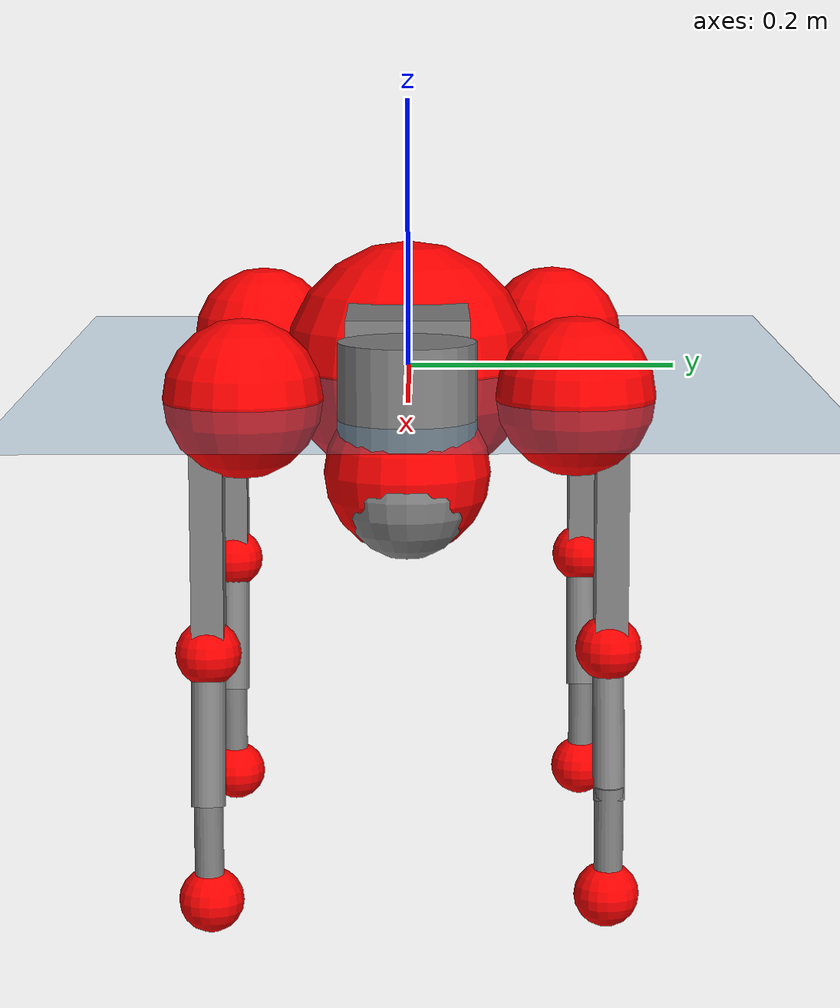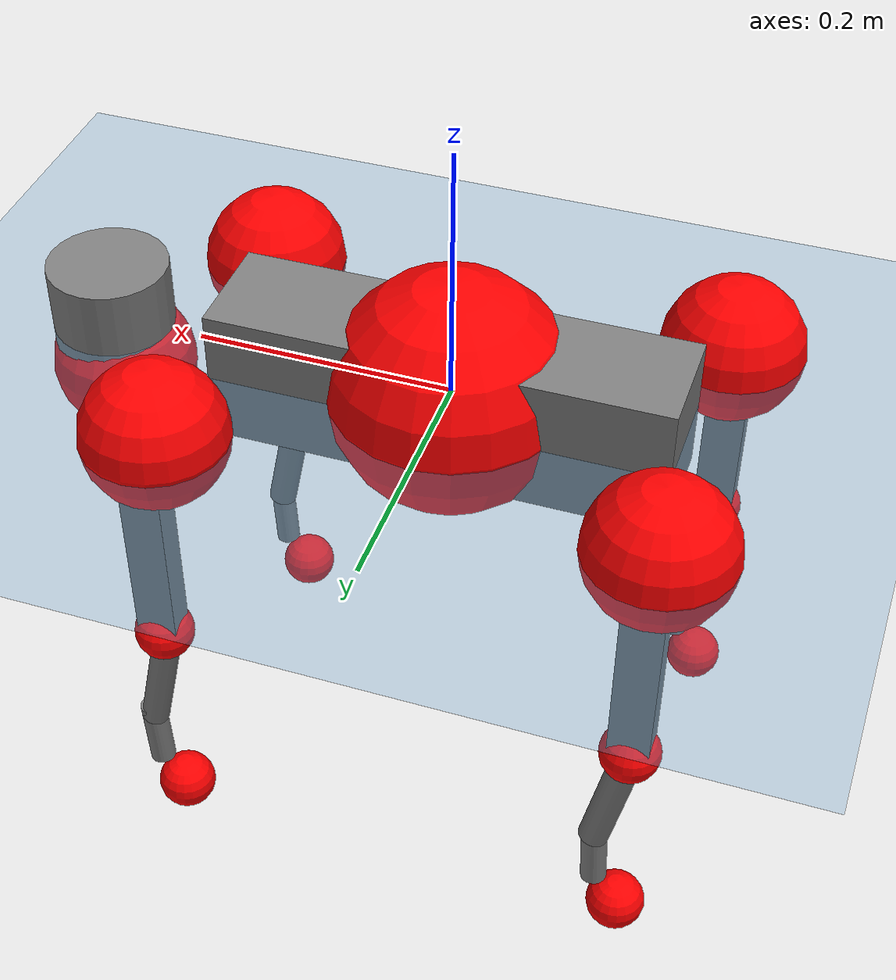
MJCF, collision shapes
<mujoco model="go2">
  <compiler angle="radian" assetdir="assets" balanceinertia="true" inertiafromgeom="false"/>

  <option timestep="0.005" density="1.2" viscosity="2e-05"/>

  <size nkey="1"/>

  <visual>
    <quality shadowsize="8192"/>
    <map shadowclip="0.5"/>
  </visual>

  <default>
    <default class="/">
      <geom contype="0" conaffinity="0" group="1" solref="-1000 -80"/>
      <site size="0.01 0.005 0.005" group="5"/>
      <general forcelimited="true" biastype="affine" gainprm="20" biasprm="0 -20 -0.5"/>
      <default class="go2">
        <joint armature="0.01" damping="0.01" frictionloss="0.2"/>
        <geom condim="1" margin="0.001"/>
        <default class="visual">
          <geom type="mesh" group="2"/>
        </default>
        <default class="collision">
          <geom group="3"/>
          <default class="foot">
            <geom size="0.022 0 0" condim="6" priority="1" friction="0.8 0.02 0.01" solimp="0.015 1 0.022"/>
          </default>
        </default>
        <default class="reward_collision_sphere">
          <geom group="5" rgba="1 0 0 1"/>
        </default>
      </default>
    </default>
  </default>

  <asset>
    <texture type="skybox" colorspace="auto" name="//unnamed_texture_0" builtin="gradient" rgb1="0.95 0.95 0.95" rgb2="0.95 0.95 0.95" width="100" height="600"/>
    <texture type="2d" colorspace="auto" name="texplane" builtin="checker" rgb1="0.345 0.575 0.748" rgb2="0.345 0.575 0.748" markrgb="1 1 1" width="512" height="512"/>
    <material name="MatPlane" class="/" texture="texplane" texuniform="true" texrepeat="2 2" specular="0.9"/>
    <material name="metal" class="/" rgba="0.9 0.95 0.95 1"/>
    <material name="black" class="/" rgba="0 0 0 1"/>
    <material name="white" class="/"/>
    <material name="gray" class="/" rgba="0.671705 0.692426 0.77427 1"/>
    <mesh name="base_0" class="/" file="base_0.obj"/>
    <mesh name="base_1" class="/" file="base_1.obj"/>
    <mesh name="base_2" class="/" file="base_2.obj"/>
    <mesh name="base_3" class="/" file="base_3.obj"/>
    <mesh name="base_4" class="/" file="base_4.obj"/>
    <mesh name="hip_0" class="/" file="hip_0.obj"/>
    <mesh name="hip_1" class="/" file="hip_1.obj"/>
    <mesh name="thigh_0" class="/" file="thigh_0.obj"/>
    <mesh name="thigh_1" class="/" file="thigh_1.obj"/>
    <mesh name="thigh_mirror_0" class="/" file="thigh_mirror_0.obj"/>
    <mesh name="thigh_mirror_1" class="/" file="thigh_mirror_1.obj"/>
    <mesh name="calf_0" class="/" file="calf_0.obj"/>
    <mesh name="calf_1" class="/" file="calf_1.obj"/>
    <mesh name="calf_mirror_0" class="/" file="calf_mirror_0.obj"/>
    <mesh name="calf_mirror_1" class="/" file="calf_mirror_1.obj"/>
    <mesh name="foot" class="/" file="foot.obj"/>
  </asset>

  <worldbody>
    <geom name="floor" class="/" size="100 100 0.125" type="plane" group="0" material="MatPlane"/>
    <light name="toplight_shadow" class="/" pos="0 0 5" dir="0.0990148 0.0990148 -0.990148" type="directional" ambient="0.04 0.04 0.04" diffuse="0.55 0.55 0.55" specular="0.12 0.12 0.12"/>
    <light name="toplight_fill" class="/" pos="0 0 5" dir="0.0990148 0.0990148 -0.990148" type="directional" castshadow="false" ambient="0.04 0.04 0.04" diffuse="0.3 0.3 0.3" specular="0.08 0.08 0.08"/>
    <body name="trunk" childclass="go2" pos="6.20316e-05 3.13342e-05 0.000789979" quat="1 -4.15748e-05 4.49459e-06 -9.28834e-06">
      <inertial pos="0.0197941 0.000248643 -0.00511519" quat="-0.000432438 0.713357 -0.00182282 0.700798" mass="5.75059" diaginertia="0.0871278 0.0983152 0.0108967"/>
      <joint name="//unnamed_joint_0" type="free" armature="0" damping="0" frictionloss="0"/>
      <geom name="//unnamed_geom_1" class="visual" material="black" mesh="base_0"/>
      <geom name="//unnamed_geom_2" class="visual" material="black" mesh="base_1"/>
      <geom name="//unnamed_geom_3" class="visual" material="black" mesh="base_2"/>
      <geom name="//unnamed_geom_4" class="visual" material="white" mesh="base_3"/>
      <geom name="//unnamed_geom_5" class="visual" material="gray" mesh="base_4"/>
      <geom name="trunk_1" class="collision" size="0.175947 0.0437294 0.0533172" type="box"/>
      <geom name="trunk_2" class="collision" size="0.0467694 0.0420925" pos="0.27308 0 0.00848741" type="cylinder"/>
      <geom name="trunk_3" class="collision" size="0.0439633" pos="0.280745 0 -0.0509244"/>
      <geom name="//unnamed_geom_9" class="reward_collision_sphere" size="0.0935389"/>
      <geom name="//unnamed_geom_10" class="reward_collision_sphere" size="0.0561233" pos="0.268289 0 -0.0381933"/>
      <site name="imu" pos="-0.0247838 0.00434248 0.034831" size="0.00935389"/>
      <camera name="track" pos="0 -1.9985 0" quat="0.707107 0.707107 0 0" mode="trackcom"/>
      <camera name="ego_camera" pos="0.298951 0 0.0381933" quat="-0.5 -0.5 0.5 0.5"/>
      <body name="FL_hip" pos="0.184725 0.0473494 0.00149872" quat="1 -0.000115959 -0.000103214 9.98678e-05">
        <inertial pos="-0.00490843 0.00229686 0.000684658" quat="0.497315 0.499368 0.506182 0.497081" mass="0.550545" diaginertia="0.000711879 0.000598145 0.000208384"/>
        <joint name="FL_hip_joint" pos="0 0 0" axis="0.999992 0.000895575 0.00378225" stiffness="0.000448232" range="-1.04034 1.04907" armature="0.00894417" damping="0.0029023" frictionloss="0.190158"/>
        <geom name="//unnamed_geom_11" class="visual" material="metal" mesh="hip_0"/>
        <geom name="//unnamed_geom_12" class="visual" material="gray" mesh="hip_1"/>
        <geom name="//unnamed_geom_13" class="collision" size="0.0430279 0.0187078" pos="0 0.0799401 0" quat="0.707107 0.707107 0 0" type="cylinder"/>
        <geom name="//unnamed_geom_14" class="reward_collision_sphere" size="0.0561233" pos="0 0.0699476 0"/>
        <body name="FL_thigh" pos="-0.000136351 0.0956349 0.00155899" quat="1 -1.68026e-05 -2.06412e-05 5.06585e-05">
          <inertial pos="-0.00372138 -0.0220822 -0.0268493" quat="0.829815 0.0856038 -0.0204516 0.551054" mass="0.94763" diaginertia="0.00482594 0.00577772 0.000383305"/>
          <joint name="FL_thigh_joint" pos="0 0 0" axis="0.00186649 0.999997 0.00135834" stiffness="0.00482231" range="-1.54921 3.47947" armature="0.00956494" damping="0.00539487" frictionloss="0.185798"/>
          <geom name="//unnamed_geom_15" class="visual" material="metal" mesh="thigh_0"/>
          <geom name="//unnamed_geom_16" class="visual" material="gray" mesh="thigh_1"/>
          <geom name="//unnamed_geom_17" class="collision" size="0.0996189 0.0114585 0.0159016" pos="0 0 -0.0903909" quat="0.707107 0 0.707107 0" type="box"/>
          <body name="FL_calf" pos="0.000286483 -0.00146753 -0.18123" quat="1 7.5418e-05 -4.82474e-05 8.74312e-05">
            <inertial pos="0.00642299 -0.000551074 -0.119291" quat="0.710552 0.00143079 -0.00440209 0.70363" mass="0.199639" diaginertia="0.00120444 0.0014586 2.35177e-05"/>
            <joint name="FL_calf_joint" pos="0 0 0" axis="0.00554673 0.999983 0.00168638" stiffness="0.000704386" range="-2.72349 -0.845443" armature="0.0094603" damping="0" frictionloss="0.194527"/>
            <geom name="//unnamed_geom_18" class="visual" material="gray" mesh="calf_0"/>
            <geom name="//unnamed_geom_19" class="visual" material="black" mesh="calf_1"/>
            <geom name="FL_calf0" class="collision" size="0.0112247 0.0561233" pos="0.0076654 0 -0.0509244" quat="0.994493 0 -0.104807 0" type="cylinder"/>
            <geom name="//unnamed_geom_21" class="collision" size="0.0102893 0.0304001" pos="0.0191635 0 -0.125614" quat="0.999688 0 0.0249974 0" type="cylinder"/>
            <geom name="//unnamed_geom_22" class="visual" pos="0 0 -0.180782" quat="1 0 0 0" material="black" mesh="foot"/>
            <geom name="FL_foot" class="foot" size="0.0174181" pos="-0.00191635 0 -0.180782"/>
            <geom name="//unnamed_geom_24" class="reward_collision_sphere" size="0.0233847"/>
            <geom name="//unnamed_geom_25" class="reward_collision_sphere" size="0.0233847" pos="-0.00191635 0 -0.180782"/>
            <site name="FL_foot" class="foot" pos="-0.00191635 0 -0.180782" size="0.00935389"/>
          </body>
        </body>
      </body>
      <body name="FR_hip" pos="0.185239 -0.0449072 0.000244727" quat="1 0.000211388 0.000177865 -0.000193008">
        <inertial pos="-0.00510281 -0.00208227 -0.000842809" quat="0.498211 0.505439 0.499196 0.497113" mass="0.55572" diaginertia="0.000716079 0.000598835 0.000211517"/>
        <joint name="FR_hip_joint" pos="0 0 0" axis="1 7.26857e-05 -5.17939e-05" range="-1.06034 1.04293" armature="0.00927993" damping="0.0131179" frictionloss="0.195674"/>
        <geom name="//unnamed_geom_26" class="visual" pos="0 1.31119e-09 5.62396e-08" quat="4.63268e-05 1 0 0" material="metal" mesh="hip_0"/>
        <geom name="//unnamed_geom_27" class="visual" pos="0 2.12559e-09 -1.39102e-07" quat="4.63268e-05 1 0 0" material="gray" mesh="hip_1"/>
        <geom name="//unnamed_geom_28" class="collision" size="0.0430279 0.0187078" pos="0 -0.0799401 0" quat="0.707107 0.707107 0 0" type="cylinder"/>
        <geom name="//unnamed_geom_29" class="reward_collision_sphere" size="0.0561233" pos="0 -0.0699476 0"/>
        <body name="FR_thigh" pos="0.00118352 -0.0956819 0.000170488" quat="1 3.08886e-05 8.81268e-05 -3.45829e-06">
          <inertial pos="-0.00380238 0.0221345 -0.02765" quat="0.551382 -0.0202074 0.0846456 0.829702" mass="0.962478" diaginertia="0.00484368 0.00592345 0.000393833"/>
          <joint name="FR_thigh_joint" pos="0 0 0" axis="-0.00371876 -0.999987 0.00350579" stiffness="0.000230642" range="-3.47167 1.56343" armature="0.00941389" damping="0.0128683" frictionloss="0.182724"/>
          <geom name="//unnamed_geom_30" class="visual" material="metal" mesh="thigh_mirror_0"/>
          <geom name="//unnamed_geom_31" class="visual" material="gray" mesh="thigh_mirror_1"/>
          <geom name="//unnamed_geom_32" class="collision" size="0.0996189 0.0114585 0.0159016" pos="0 0 -0.0903909" quat="0.707107 0 0.707107 0" type="box"/>
          <body name="FR_calf" pos="7.30212e-05 -0.000458055 -0.18146" quat="1 -0.000215047 -0.000110735 8.16293e-05">
            <inertial pos="0.00615798 0.000174824 -0.119613" quat="0.703115 -0.00470961 0.00267093 0.711055" mass="0.194509" diaginertia="0.00118806 0.00145583 2.33599e-05"/>
            <joint name="FR_calf_joint" pos="0 0 0" axis="-0.00266477 -0.999969 -0.00743073" range="0.841341 2.72805" armature="0.00945355" damping="0.00737456" frictionloss="0.177898"/>
            <geom name="//unnamed_geom_33" class="visual" material="gray" mesh="calf_mirror_0"/>
            <geom name="//unnamed_geom_34" class="visual" material="black" mesh="calf_mirror_1"/>
            <geom name="FR_calf0" class="collision" size="0.0121601 0.0561233" pos="0.00958175 0 -0.0509244" quat="0.995004 0 -0.0998334 0" type="cylinder"/>
            <geom name="//unnamed_geom_36" class="collision" size="0.0102893 0.0304001" pos="0.0191635 0 -0.125614" quat="0.999688 0 0.0249974 0" type="cylinder"/>
            <geom name="//unnamed_geom_37" class="visual" pos="0 0 -0.180782" quat="1 0 0 0" material="black" mesh="foot"/>
            <geom name="FR_foot" class="foot" size="0.0214171" pos="-0.00191635 0 -0.180782"/>
            <geom name="//unnamed_geom_39" class="reward_collision_sphere" size="0.0233847"/>
            <geom name="//unnamed_geom_40" class="reward_collision_sphere" size="0.0233847" pos="-0.00191635 0 -0.180782"/>
            <site name="FR_foot" class="foot" pos="-0.00191635 0 -0.180782" size="0.00935389"/>
          </body>
        </body>
      </body>
      <body name="RL_hip" pos="-0.186022 0.0464258 -0.000243383" quat="1 -8.21717e-06 -4.07151e-05 -2.8286e-05">
        <inertial pos="0.00586202 0.00261619 0.000535697" quat="0.506968 0.493121 0.498095 0.501712" mass="0.547614" diaginertia="0.000714169 0.000587442 0.000212989"/>
        <joint name="RL_hip_joint" pos="0 0 0" axis="-0.999896 0.0091821 -0.0111282" stiffness="0.00100799" range="-1.03882 1.06049" armature="0.00939436" damping="0.0164955" frictionloss="0.179538"/>
        <geom name="//unnamed_geom_41" class="visual" pos="-9.53345e-10 0 -1.86878e-07" quat="4.63268e-05 0 1 0" material="metal" mesh="hip_0"/>
        <geom name="//unnamed_geom_42" class="visual" pos="-1.54549e-09 0 -1.65734e-07" quat="4.63268e-05 0 1 0" material="gray" mesh="hip_1"/>
        <geom name="//unnamed_geom_43" class="collision" size="0.0430279 0.0187078" pos="0 0.0799401 0" quat="0.707107 0.707107 0 0" type="cylinder"/>
        <geom name="//unnamed_geom_44" class="reward_collision_sphere" size="0.0561233" pos="0 0.0699476 0"/>
        <body name="RL_thigh" pos="0.000271977 0.0956928 -0.00039842" quat="1 4.51814e-05 7.49455e-05 -0.000427185">
          <inertial pos="-0.00343598 -0.0212446 -0.0278386" quat="0.828959 0.0845361 -0.0190904 0.552554" mass="0.951719" diaginertia="0.0047971 0.00590683 0.000385029"/>
          <joint name="RL_thigh_joint" pos="0 0 0" axis="-0.000122644 1 -0.000872473" range="-0.522529 4.53746" armature="0.00940644" damping="0.00981112" frictionloss="0.187816"/>
          <geom name="//unnamed_geom_45" class="visual" material="metal" mesh="thigh_0"/>
          <geom name="//unnamed_geom_46" class="visual" material="gray" mesh="thigh_1"/>
          <geom name="//unnamed_geom_47" class="collision" size="0.0996189 0.0114585 0.0159016" pos="0 0 -0.0903909" quat="0.707107 0 0.707107 0" type="box"/>
          <body name="RL_calf" pos="-5.76059e-05 -0.000758203 -0.180667" quat="1 4.4847e-05 6.51773e-05 8.04352e-05">
            <inertial pos="0.0053993 -0.000635643 -0.119138" quat="0.710747 0.00157225 -0.00455322 0.703431" mass="0.200525" diaginertia="0.00121942 0.00148314 2.41032e-05"/>
            <joint name="RL_calf_joint" pos="0 0 0" axis="-0.00262709 0.999966 0.00775565" range="-2.72437 -0.861943" armature="0.00944491" damping="0" frictionloss="0.180487"/>
            <geom name="//unnamed_geom_48" class="visual" material="gray" mesh="calf_0"/>
            <geom name="//unnamed_geom_49" class="visual" material="black" mesh="calf_1"/>
            <geom name="RL_calf0" class="collision" size="0.0121601 0.0561233" pos="0.00958175 0 -0.0509244" quat="0.995004 0 -0.0998334 0" type="cylinder"/>
            <geom name="//unnamed_geom_51" class="collision" size="0.0102893 0.0304001" pos="0.0191635 0 -0.125614" quat="0.999688 0 0.0249974 0" type="cylinder"/>
            <geom name="//unnamed_geom_52" class="visual" pos="0 0 -0.180782" quat="1 0 0 0" material="black" mesh="foot"/>
            <geom name="RL_foot" class="foot" size="0.0175278" pos="-0.00191635 0 -0.180782"/>
            <geom name="//unnamed_geom_54" class="reward_collision_sphere" size="0.0233847"/>
            <geom name="//unnamed_geom_55" class="reward_collision_sphere" size="0.0233847" pos="-0.00191635 0 -0.180782"/>
            <site name="RL_foot" class="foot" pos="-0.00191635 0 -0.180782" size="0.00935389"/>
          </body>
        </body>
      </body>
      <body name="RR_hip" pos="-0.185513 -0.0483147 -0.000820628" quat="1 -5.16476e-05 8.0907e-05 3.94445e-06">
        <inertial pos="0.00563284 -0.00263909 0.000379854" quat="0.496676 0.495035 0.499372 0.508803" mass="0.558616" diaginertia="0.000713693 0.000605999 0.000213541"/>
        <joint name="RR_hip_joint" pos="0 0 0" axis="-0.999993 0.00234576 0.00303478" range="-1.04177 1.05756" armature="0.00938638" damping="0.00827949" frictionloss="0.178484"/>
        <geom name="//unnamed_geom_56" class="visual" pos="9.54767e-10 1.31119e-09 -2.43117e-07" quat="2.14617e-09 4.63268e-05 4.63268e-05 -1" material="metal" mesh="hip_0"/>
        <geom name="//unnamed_geom_57" class="visual" pos="1.54197e-09 2.12559e-09 -2.66319e-08" quat="2.14617e-09 4.63268e-05 4.63268e-05 -1" material="gray" mesh="hip_1"/>
        <geom name="//unnamed_geom_58" class="collision" size="0.0430279 0.0187078" pos="0 -0.0799401 0" quat="0.707107 0.707107 0 0" type="cylinder"/>
        <geom name="//unnamed_geom_59" class="reward_collision_sphere" size="0.0561233" pos="0 -0.0699476 0"/>
        <body name="RR_thigh" pos="0.000251499 -0.0962004 -0.00243305" quat="1 -0.000115403 -3.31769e-06 1.20991e-05">
          <inertial pos="-0.00338336 0.0234187 -0.0287302" quat="0.549684 -0.0198669 0.0835756 0.830944" mass="0.931872" diaginertia="0.00476078 0.00573759 0.000382684"/>
          <joint name="RR_thigh_joint" pos="0 0 0" axis="0.00772832 -0.999951 -0.00621778" range="-4.54652 0.518462" armature="0.00985457" damping="0.0170366" frictionloss="0.188439"/>
          <geom name="//unnamed_geom_60" class="visual" material="metal" mesh="thigh_mirror_0"/>
          <geom name="//unnamed_geom_61" class="visual" material="gray" mesh="thigh_mirror_1"/>
          <geom name="//unnamed_geom_62" class="collision" size="0.0996189 0.0114585 0.0159016" pos="0 0 -0.0903909" quat="0.707107 0 0.707107 0" type="box"/>
          <body name="RR_calf" pos="0.00104874 -0.000293938 -0.181394" quat="1 0.000224816 -8.70943e-05 -6.33266e-06">
            <inertial pos="0.00511726 0.000655164 -0.120365" quat="0.70365 -0.00623768 0.00395835 0.710509" mass="0.199078" diaginertia="0.00122239 0.00146888 2.39474e-05"/>
            <joint name="RR_calf_joint" pos="0 0 0" axis="-0.00137982 -0.999991 0.00411802" range="0.829097 2.72646" armature="0.00947182" damping="0.00921202" frictionloss="0.18968"/>
            <geom name="//unnamed_geom_63" class="visual" material="gray" mesh="calf_mirror_0"/>
            <geom name="//unnamed_geom_64" class="visual" material="black" mesh="calf_mirror_1"/>
            <geom name="RR_calf0" class="collision" size="0.0121601 0.0561233" pos="0.00958175 0 -0.0509244" quat="0.995004 0 -0.0998334 0" type="cylinder"/>
            <geom name="//unnamed_geom_66" class="collision" size="0.0102893 0.0304001" pos="0.0191635 0 -0.125614" quat="0.999688 0 0.0249974 0" type="cylinder"/>
            <geom name="//unnamed_geom_67" class="visual" pos="0 0 -0.180782" quat="1 0 0 0" material="black" mesh="foot"/>
            <geom name="RR_foot" class="foot" size="0.0210925" pos="-0.00191635 0 -0.180782"/>
            <geom name="//unnamed_geom_69" class="reward_collision_sphere" size="0.0233847"/>
            <geom name="//unnamed_geom_70" class="reward_collision_sphere" size="0.0233847" pos="-0.00191635 0 -0.180782"/>
            <site name="RR_foot" class="foot" pos="-0.00191635 0 -0.180782" size="0.00935389"/>
          </body>
        </body>
      </body>
    </body>
  </worldbody>

  <contact>
    <pair class="/" geom1="floor" geom2="FL_foot" name="//unnamed_contact_0"/>
    <pair class="/" geom1="floor" geom2="FR_foot" name="//unnamed_contact_1"/>
    <pair class="/" geom1="floor" geom2="RL_foot" name="//unnamed_contact_2"/>
    <pair class="/" geom1="floor" geom2="RR_foot" name="//unnamed_contact_3"/>
  </contact>

  <actuator>
    <general name="FL_hip" class="/" joint="FL_hip_joint" forcerange="-22.8505 22.8505" gainprm="19.0074" biasprm="0 -19.0074 -0.464392"/>
    <general name="FL_thigh" class="/" joint="FL_thigh_joint" forcerange="-21.4176 21.4176" gainprm="19.0074" biasprm="0 -19.0074 -0.464392"/>
    <general name="FL_calf" class="/" joint="FL_calf_joint" forcerange="-42.8242 42.8242" gainprm="19.0074" biasprm="0 -19.0074 -0.464392"/>
    <general name="FR_hip" class="/" joint="FR_hip_joint" forcerange="-21.9041 21.9041" gainprm="19.0074" biasprm="0 -19.0074 -0.464392"/>
    <general name="FR_thigh" class="/" joint="FR_thigh_joint" forcerange="-21.9722 21.9722" gainprm="19.0074" biasprm="0 -19.0074 -0.464392"/>
    <general name="FR_calf" class="/" joint="FR_calf_joint" forcerange="-43.107 43.107" gainprm="19.0074" biasprm="0 -19.0074 -0.464392"/>
    <general name="RL_hip" class="/" joint="RL_hip_joint" forcerange="-21.4465 21.4465" gainprm="19.0074" biasprm="0 -19.0074 -0.464392"/>
    <general name="RL_thigh" class="/" joint="RL_thigh_joint" forcerange="-22.2242 22.2242" gainprm="19.0074" biasprm="0 -19.0074 -0.464392"/>
    <general name="RL_calf" class="/" joint="RL_calf_joint" forcerange="-43.7667 43.7667" gainprm="19.0074" biasprm="0 -19.0074 -0.464392"/>
    <general name="RR_hip" class="/" joint="RR_hip_joint" forcerange="-21.4537 21.4537" gainprm="19.0074" biasprm="0 -19.0074 -0.464392"/>
    <general name="RR_thigh" class="/" joint="RR_thigh_joint" forcerange="-21.8111 21.8111" gainprm="19.0074" biasprm="0 -19.0074 -0.464392"/>
    <general name="RR_calf" class="/" joint="RR_calf_joint" forcerange="-41.9255 41.9255" gainprm="19.0074" biasprm="0 -19.0074 -0.464392"/>
  </actuator>

  <sensor>
    <gyro site="imu" name="imu_angular_velocity"/>
    <velocimeter site="imu" name="imu_linear_velocity"/>
    <framelinvel objtype="site" objname="FL_foot" name="FL_foot_global_linear_velocity"/>
    <framelinvel objtype="site" objname="FR_foot" name="FR_foot_global_linear_velocity"/>
    <framelinvel objtype="site" objname="RL_foot" name="RL_foot_global_linear_velocity"/>
    <framelinvel objtype="site" objname="RR_foot" name="RR_foot_global_linear_velocity"/>
  </sensor>

  <keyframe>
    <key name="home" qpos="0 0 0.325 1 0 0 0 0.1 0.8 -1.5 -0.1 -0.8 1.5 -0.1 0.8 -1.5 0.1 -0.8 1.5"/>
  </keyframe>
</mujoco>
